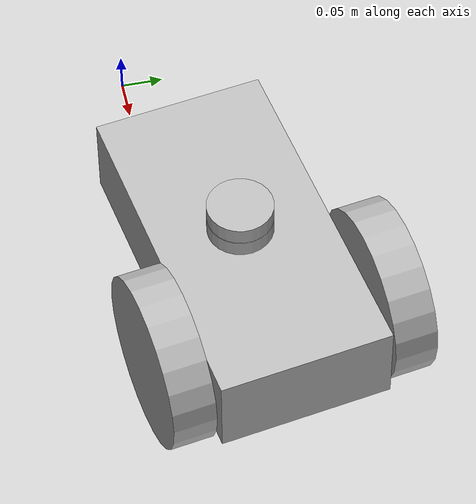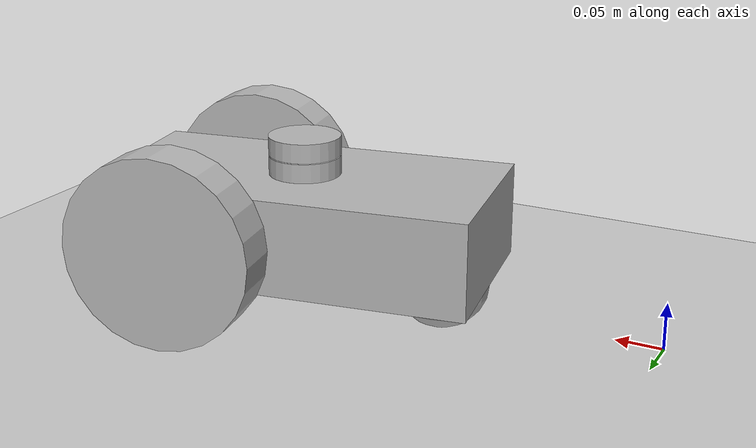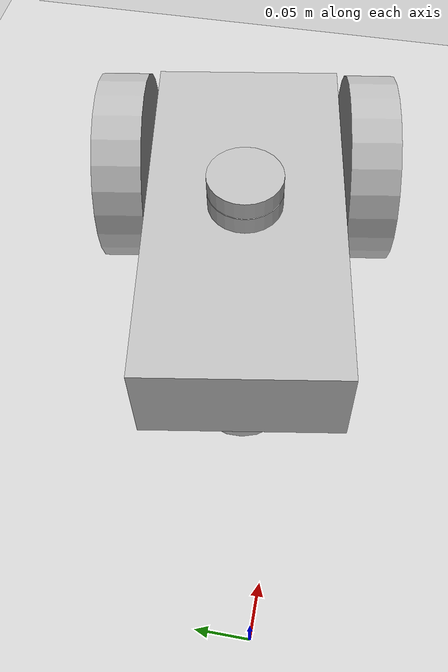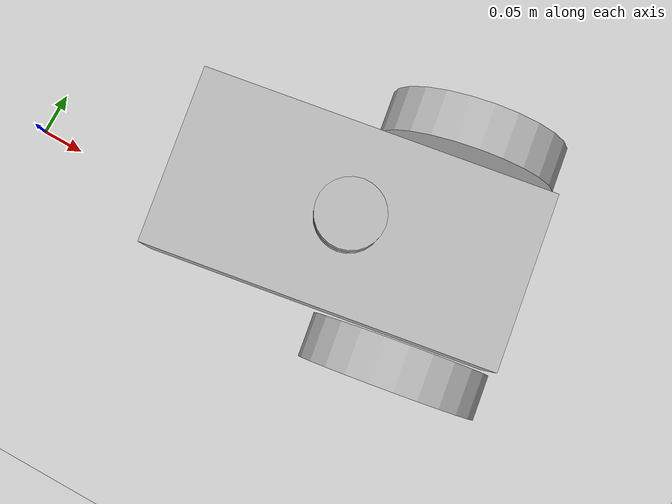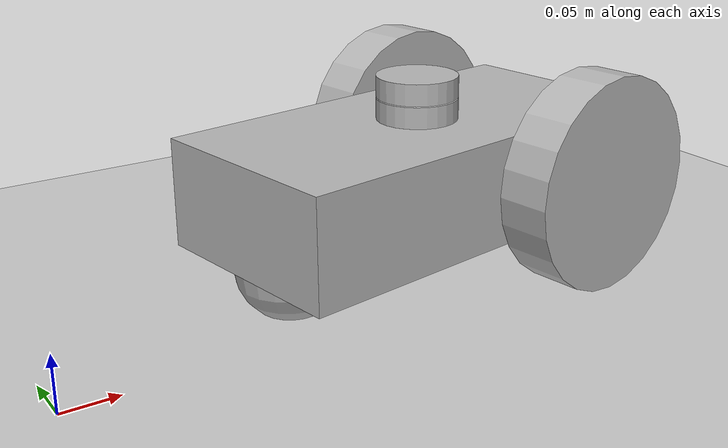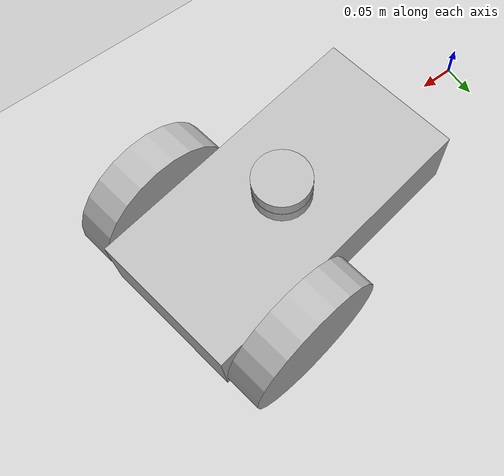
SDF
<sdf version="1.6">
 <world name="default">
  <light name="sun" type="directional">
   <pose>0 0 10 0 -0 0</pose>
   <diffuse>0.8 0.8 0.8 1</diffuse>
   <specular>0.2 0.2 0.2 1</specular>
   <attenuation>
    <range>1000</range>
    <constant>0.9</constant>
    <linear>0.01</linear>
    <quadratic>0.001</quadratic>
   </attenuation>
   <direction>-0.5 0.1 -0.9</direction>
  </light>
  <model name="ground_plane">
   <static>1</static>
   <link name="link">
    <collision name="collision">
     <geometry><plane><normal>0 0 1</normal><size>100 100</size></plane></geometry>
     <surface>
      <contact><collide_bitmask>65535</collide_bitmask></contact>
      <friction><ode><mu>100</mu><mu2>50</mu2></ode></friction>
     </surface>
    </collision>
    <visual name="visual">
     <cast_shadows>0</cast_shadows>
     <geometry><plane><normal>0 0 1</normal><size>100 100</size></plane></geometry>
     <material>
      <script><uri>file://media/materials/scripts/gazebo.material</uri><name>Gazebo/Grey</name></script>
     </material>
    </visual>
   </link>
  </model>
  <gravity>0 0 -9.8</gravity>
  <magnetic_field>6e-06 2.3e-05 -4.2e-05</magnetic_field>
  <atmosphere type="adiabatic"/>
  <physics name="default_physics" default="0" type="ode">
   <max_step_size>0.001</max_step_size>
   <real_time_factor>1</real_time_factor>
   <real_time_update_rate>1000</real_time_update_rate>
  </physics>
  <scene><ambient>0.4 0.4 0.4 1</ambient><background>0.7 0.7 0.7 1</background><shadows>1</shadows></scene>
  <audio><device>default</device></audio>
  <spherical_coordinates>
   <surface_model>EARTH_WGS84</surface_model>
   <latitude_deg>0</latitude_deg>
   <longitude_deg>0</longitude_deg>
   <elevation>0</elevation>
   <heading_deg>0</heading_deg>
  </spherical_coordinates>
  <model name="my_robot">
   <static>0</static>
   <link name="chassis">
    <pose>0 0 0.1 0 -0 0</pose>
    <inertial>
     <mass>10</mass>
     <pose>0 0 0.1 0 -0 0</pose>
     <inertia><ixx>0.5</ixx><iyy>1</iyy><izz>0.1</izz><ixy>0</ixy><ixz>0</ixz><iyz>0</iyz></inertia>
    </inertial>
    <collision name="collision"><geometry><box><size>0.4 0.2 0.1</size></box></geometry></collision>
    <visual name="visual"><geometry><box><size>0.4 0.2 0.1</size></box></geometry></visual>
    <collision name="caster_collision">
     <pose>-0.15 0 -0.05 0 -0 0</pose>
     <geometry><sphere><radius>0.05</radius></sphere></geometry>
     <surface><friction><ode><mu>0</mu><mu2>0</mu2><slip1>1</slip1><slip2>1</slip2></ode></friction></surface>
    </collision>
    <visual name="caster_visual">
     <pose>-0.15 0 -0.05 0 -0 0</pose>
     <geometry><sphere><radius>0.05</radius></sphere></geometry>
    </visual>
   </link>
   <link name="right_wheel">
    <pose>0.1 0.13 0.1 -0 1.5707 1.5707</pose>
    <inertial>
     <pose>0.1 0.13 0.1 -0 1.5707 1.5707</pose>
     <mass>1</mass>
     <inertia><ixx>0.0045</ixx><iyy>0.005</iyy><izz>0.0045</izz><ixy>0</ixy><ixz>0</ixz><iyz>0</iyz></inertia>
    </inertial>
    <collision name="collision">
     <geometry><cylinder><radius>0.1</radius><length>0.05</length></cylinder></geometry>
     <surface><friction><ode><mu>10</mu><mu2>10</mu2></ode></friction></surface>
    </collision>
    <visual name="visual">
     <geometry><cylinder><radius>0.1</radius><length>0.05</length></cylinder></geometry>
    </visual>
   </link>
   <link name="left_wheel">
    <pose>0.1 -0.13 0.1 -0 1.5707 1.5707</pose>
    <inertial>
     <pose>0.1 0.13 0.1 -0 1.5707 1.5707</pose>
     <mass>1</mass>
     <inertia><ixx>0.0045</ixx><iyy>0.005</iyy><izz>0.0045</izz><ixy>0</ixy><ixz>0</ixz><iyz>0</iyz></inertia>
    </inertial>
    <collision name="collision">
     <geometry><cylinder><radius>0.1</radius><length>0.05</length></cylinder></geometry>
     <surface><friction><ode><mu>10</mu><mu2>10</mu2></ode></friction></surface>
    </collision>
    <visual name="visual">
     <geometry><cylinder><radius>0.1</radius><length>0.05</length></cylinder></geometry>
    </visual>
   </link>
   <link name="rplidar::base">
    <pose>0 0 0.16 0 -0 0</pose>
    <collision name="base_collision">
     <geometry><cylinder><radius>0.038</radius><length>0.02</length></cylinder></geometry>
    </collision>
    <visual name="base_visual">
     <geometry><cylinder><radius>0.038</radius><length>0.02</length></cylinder></geometry>
    </visual>
    <inertial>
     <inertia><ixx>1</ixx><ixy>0</ixy><ixz>0</ixz><iyy>1</iyy><iyz>0</iyz><izz>1</izz></inertia>
     <mass>1</mass>
    </inertial>
   </link>
   <link name="rplidar::top">
    <sensor name="sensor" type="ray">
     <pose>0 0 0.002 0 -0 1.5707</pose>
     <visualize>1</visualize>
     <topic>range</topic>
     <update_rate>30</update_rate>
     <ray>
      <noise><type>gaussian</type><mean>0</mean><stddev>0.02</stddev></noise>
      <scan>
       <horizontal>
        <samples>120</samples>
        <resolution>1</resolution>
        <min_angle>0</min_angle>
        <max_angle>6.28</max_angle>
       </horizontal>
       <vertical><samples>1</samples><min_angle>0</min_angle><max_angle>0</max_angle></vertical>
      </scan>
      <range><min>0.15</min><max>12</max><resolution>0.02</resolution></range>
     </ray>
     <plugin name="sensor_plugin" filename="libgazebo_ros_laser.so">
      <topicName>/my_car/rplidar/scan</topicName>
      <frameName>/my_robot/odom</frameName>
     </plugin>
    </sensor>
    <pose>0 0 0.181 0 -0 0</pose>
    <collision name="top_collision">
     <geometry><cylinder><radius>0.038</radius><length>0.02</length></cylinder></geometry>
    </collision>
    <visual name="top_visual">
     <geometry><cylinder><radius>0.038</radius><length>0.02</length></cylinder></geometry>
    </visual>
    <inertial>
     <inertia><ixx>1</ixx><ixy>0</ixy><ixz>0</ixz><iyy>1</iyy><iyz>0</iyz><izz>1</izz></inertia>
     <mass>1</mass>
    </inertial>
   </link>
   <joint name="rplidar::joint" type="revolute">
    <pose>0 0 -0.016 0 -0 0</pose>
    <parent>rplidar::base</parent>
    <child>rplidar::top</child>
    <axis>
     <xyz>0 0 1</xyz>
     <limit><lower>-1e+16</lower><upper>1e+16</upper></limit>
     <use_parent_model_frame>0</use_parent_model_frame>
     <dynamics><spring_reference>0</spring_reference><spring_stiffness>0</spring_stiffness></dynamics>
    </axis>
   </joint>
   <joint name="rplidar_joint" type="fixed"><child>rplidar::base</child><parent>chassis</parent></joint>
   <joint name="left_wheel_joint" type="revolute">
    <pose>0 0 -0.03 0 -0 0</pose>
    <child>left_wheel</child>
    <parent>chassis</parent>
    <axis>
     <xyz>0 1 0</xyz>
     <use_parent_model_frame>1</use_parent_model_frame>
     <limit><lower>-1e+16</lower><upper>1e+16</upper></limit>
     <dynamics><spring_reference>0</spring_reference><spring_stiffness>0</spring_stiffness></dynamics>
    </axis>
   </joint>
   <joint name="right_wheel_joint" type="revolute">
    <pose>0 0 0.03 0 -0 0</pose>
    <child>right_wheel</child>
    <parent>chassis</parent>
    <axis>
     <xyz>0 1 0</xyz>
     <use_parent_model_frame>1</use_parent_model_frame>
     <limit><lower>-1e+16</lower><upper>1e+16</upper></limit>
     <dynamics><spring_reference>0</spring_reference><spring_stiffness>0</spring_stiffness></dynamics>
    </axis>
   </joint>
   <plugin name="differential_drive_controller" filename="libgazebo_ros_diff_drive.so">
    <alwaysOn>1</alwaysOn>
    <updateRate>20</updateRate>
    <leftJoint>left_wheel_joint</leftJoint>
    <rightJoint>right_wheel_joint</rightJoint>
    <wheelSeparation>0.4</wheelSeparation>
    <wheelDiameter>0.1</wheelDiameter>
    <wheelTorque>20</wheelTorque>
    <commandTopic>cmd_vel</commandTopic>
    <odometryTopic>odom</odometryTopic>
    <odometryFrame>odom</odometryFrame>
    <publishTf>1</publishTf>
    <publishWheelJointState>1</publishWheelJointState>
    <robotBaseFrame>chassis</robotBaseFrame>
   </plugin>
   <pose>0.370518 0.070079 -9e-06 -2e-05 5.7e-05 0.158728</pose>
  </model>
 </world>
</sdf>
